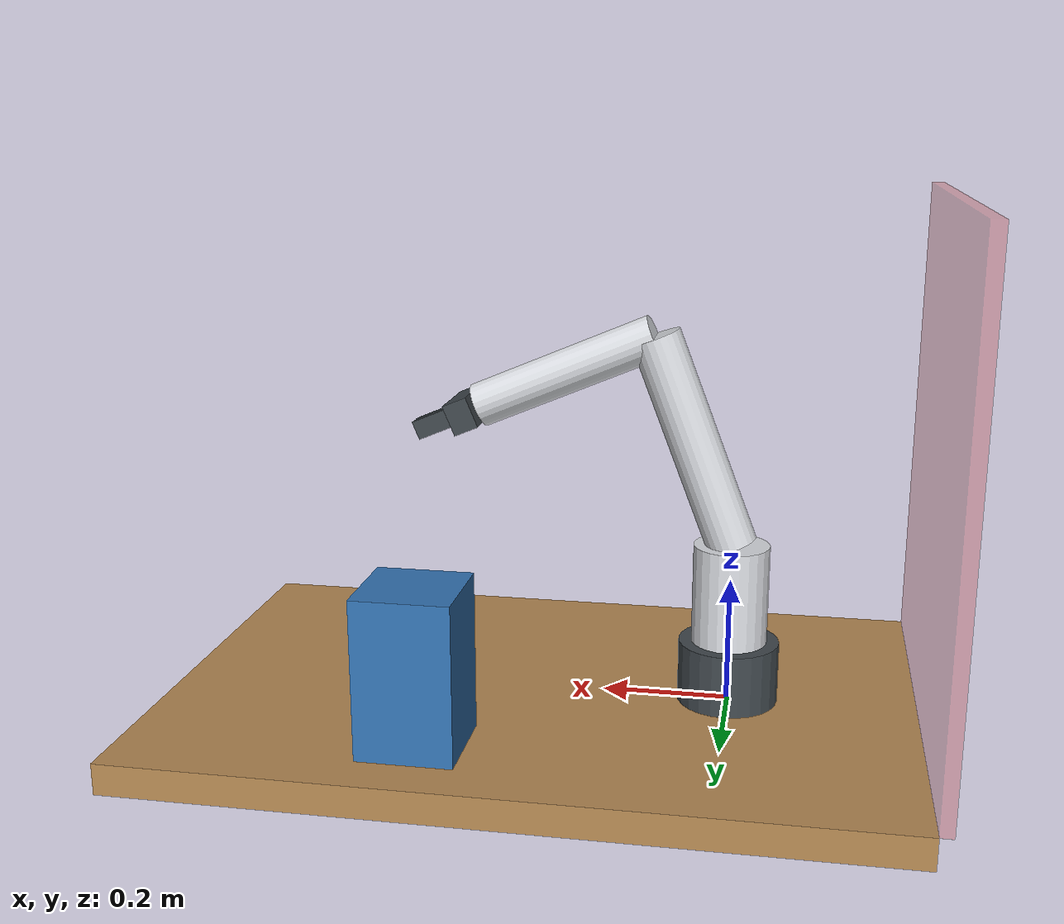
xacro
<?xml version="1.0"?>
<!-- A three-joint arm with a two-finger gripper on a table, next to a box and a wall.
     Only primitive shapes, so it runs without any ROS package. Edit a size and save. -->
<robot name="demo_cell" xmlns:xacro="http://www.ros.org/wiki/xacro">
  <xacro:arg name="obstacle" default="true"/>
  <xacro:property name="upper_arm" value="0.35"/>
  <xacro:property name="forearm" value="0.30"/>

  <material name="arm"><color rgba="0.85 0.86 0.88 1"/></material>
  <material name="joint"><color rgba="0.25 0.28 0.30 1"/></material>
  <material name="table"><color rgba="0.70 0.53 0.32 1"/></material>
  <material name="obstacle"><color rgba="0.20 0.45 0.70 1"/></material>
  <material name="wall"><color rgba="0.80 0.20 0.20 0.3"/></material>

  <xacro:macro name="solid" params="name *geometry material">
    <link name="${name}">
      <visual><xacro:insert_block name="geometry"/><material name="${material}"/></visual>
      <collision><xacro:insert_block name="geometry"/></collision>
    </link>
  </xacro:macro>

  <link name="world"/>

  <xacro:solid name="table" material="table">
    <geometry><box size="1.2 0.8 0.05"/></geometry>
  </xacro:solid>
  <joint name="table_joint" type="fixed">
    <parent link="world"/><child link="table"/><origin xyz="0.3 0 -0.025"/>
  </joint>

  <xacro:if value="$(arg obstacle)">
    <xacro:solid name="obstacle" material="obstacle">
      <geometry><box size="0.15 0.15 0.25"/></geometry>
    </xacro:solid>
    <joint name="obstacle_joint" type="fixed">
      <parent link="world"/><child link="obstacle"/><origin xyz="0.45 0.25 0.125"/>
    </joint>
  </xacro:if>

  <xacro:solid name="back_wall" material="wall">
    <geometry><box size="0.02 0.8 0.8"/></geometry>
  </xacro:solid>
  <joint name="back_wall_joint" type="fixed">
    <parent link="world"/><child link="back_wall"/><origin xyz="-0.31 0 0.4"/>
  </joint>

  <link name="base">
    <visual><origin xyz="0 0 0.05"/><geometry><cylinder radius="0.08" length="0.1"/></geometry><material name="joint"/></visual>
    <collision><origin xyz="0 0 0.05"/><geometry><cylinder radius="0.08" length="0.1"/></geometry></collision>
  </link>
  <joint name="base_joint" type="fixed">
    <parent link="world"/><child link="base"/>
  </joint>

  <link name="shoulder">
    <visual><origin xyz="0 0 0.08"/><geometry><cylinder radius="0.06" length="0.16"/></geometry><material name="arm"/></visual>
    <collision><origin xyz="0 0 0.08"/><geometry><cylinder radius="0.06" length="0.16"/></geometry></collision>
  </link>
  <joint name="pan" type="revolute">
    <parent link="base"/><child link="shoulder"/><origin xyz="0 0 0.1"/>
    <axis xyz="0 0 1"/><limit lower="-2.9" upper="2.9" effort="10" velocity="1"/>
  </joint>

  <link name="upper_arm">
    <visual><origin xyz="${upper_arm / 2} 0 0" rpy="0 ${pi / 2} 0"/><geometry><cylinder radius="0.04" length="${upper_arm}"/></geometry><material name="arm"/></visual>
    <collision><origin xyz="${upper_arm / 2} 0 0" rpy="0 ${pi / 2} 0"/><geometry><cylinder radius="0.04" length="${upper_arm}"/></geometry></collision>
  </link>
  <joint name="shoulder_lift" type="revolute">
    <parent link="shoulder"/><child link="upper_arm"/><origin xyz="0 0 0.16" rpy="0 -1.2 0"/>
    <axis xyz="0 1 0"/><limit lower="-1.5" upper="1.5" effort="10" velocity="1"/>
  </joint>

  <link name="forearm">
    <visual><origin xyz="${forearm / 2} 0 0" rpy="0 ${pi / 2} 0"/><geometry><cylinder radius="0.035" length="${forearm}"/></geometry><material name="arm"/></visual>
    <collision><origin xyz="${forearm / 2} 0 0" rpy="0 ${pi / 2} 0"/><geometry><cylinder radius="0.035" length="${forearm}"/></geometry></collision>
  </link>
  <joint name="elbow" type="revolute">
    <parent link="upper_arm"/><child link="forearm"/><origin xyz="${upper_arm} 0 0" rpy="0 1.6 0"/>
    <axis xyz="0 1 0"/><limit lower="-2.4" upper="2.4" effort="10" velocity="1"/>
  </joint>

  <link name="hand">
    <visual><geometry><box size="0.04 0.12 0.05"/></geometry><material name="joint"/></visual>
    <collision><geometry><box size="0.04 0.12 0.05"/></geometry></collision>
  </link>
  <joint name="wrist" type="fixed">
    <parent link="forearm"/><child link="hand"/><origin xyz="${forearm + 0.02} 0 0"/>
  </joint>

  <xacro:macro name="finger" params="side sign">
    <link name="finger_${side}">
      <visual><origin xyz="0.035 0 0"/><geometry><box size="0.07 0.012 0.03"/></geometry><material name="joint"/></visual>
      <collision><origin xyz="0.035 0 0"/><geometry><box size="0.07 0.012 0.03"/></geometry></collision>
    </link>
    <joint name="finger_${side}_joint" type="prismatic">
      <parent link="hand"/><child link="finger_${side}"/><origin xyz="0.02 ${sign * 0.012} 0"/>
      <axis xyz="0 ${sign} 0"/><limit lower="0" upper="0.04" effort="10" velocity="0.1"/>
      <xacro:if value="${side == 'right'}"><mimic joint="finger_left_joint"/></xacro:if>
    </joint>
  </xacro:macro>
  <xacro:finger side="left" sign="1"/>
  <xacro:finger side="right" sign="-1"/>

  <link name="tool_tip"/>
  <joint name="tool_tip_joint" type="fixed">
    <parent link="hand"/><child link="tool_tip"/><origin xyz="0.09 0 0"/>
  </joint>
</robot>
